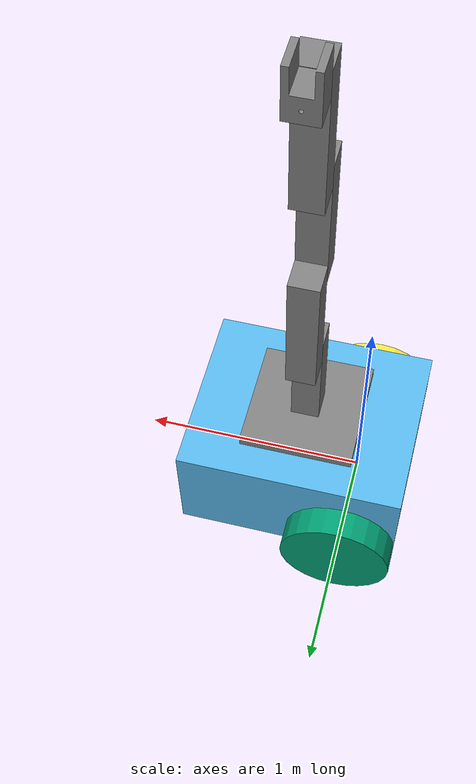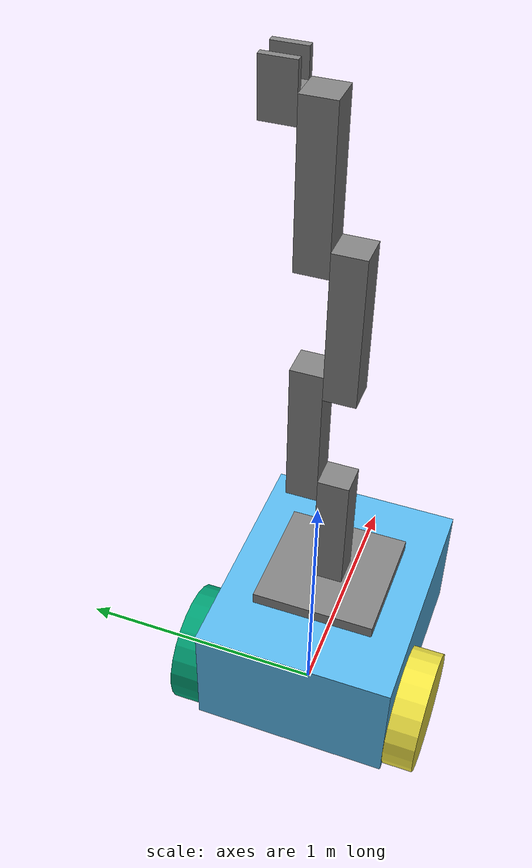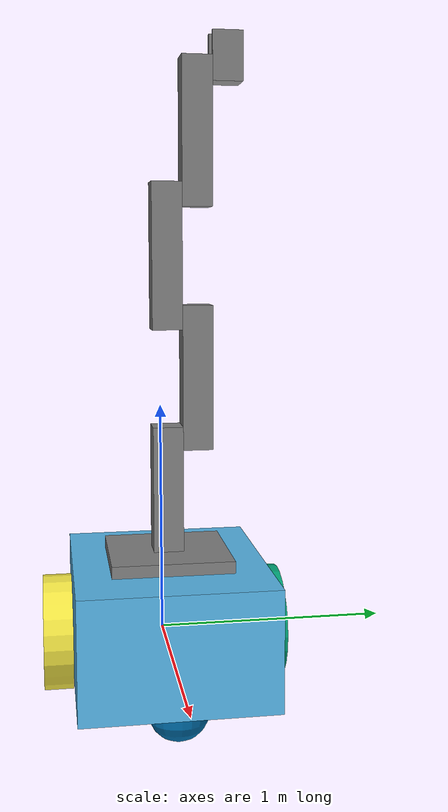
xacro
<?xml version='1.0'?>
<robot xmlns:xacro="http://www.ros.org/wiki/xacro" name="robot_complete_seb">

    <xacro:include filename="part_car_seb.urdf.xacro" />
    <xacro:include filename="part_arm_seb.urdf.xacro" />

    <!-- Connect arm to car -->
    <joint name="car_to_arm_joint" type="fixed">
        <parent link="chassis_link" />
        <child link="armBase_link" />
        <origin xyz="${blx/2} 0 ${blz}" rpy="0 0 0" />
    </joint>

</robot>

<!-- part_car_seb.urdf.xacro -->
<robot xmlns:xacro="http://www.ros.org/wiki/xacro" name="robot_car_seb">

    <!-- PROPIEDADES -->
    <xacro:property name="blx" value="${10/10}" />
    <xacro:property name="bly" value="${8/10}" />
    <xacro:property name="blz" value="${5/10}" />

    <xacro:property name="m" value="1" />

    <xacro:property name="olx" value="${2.5/10}" />
    <xacro:property name="oly" value="${(4 + 1.25/2)/10}" />
    <xacro:property name="olz" value="${1.25/10}" />

    <xacro:property name="crad" value="${2.5/10}" />
    <xacro:property name="lrad" value="${1.25/10}" />

    <xacro:property name="srad" value="${(2.5/2)/10}" />
    <xacro:property name="slx" value="${10/10 - srad}" />

    <!-- MACROS / FUNCIONES -->
    <xacro:macro name="wheel_macro" params="p_name p_radius p_length">
        <link name="${p_name}">
            <visual>
                <!-- box geometry -->
                <geometry>
                    <cylinder radius="${p_radius}" length="${p_length}" />
                </geometry>
                <origin xyz="0 0 0" rpy="${-pi/2} 0 0" />
            </visual>

            <inertial>
                <mass value="${m}" />
                <origin xyz="0 0 0" rpy="0 0 0" />
                <inertia ixx="${1/12*m*(p_length*p_length + 3*p_radius*p_radius)}" ixy="0" ixz="0"
                    iyy="${1/12*m*(p_length*p_length + 3*p_radius*p_radius)}" iyz="0"
                    izz="${1/2*m*p_radius*p_radius}" />
            </inertial>

            <collision>
                <!-- box geometry -->
                <geometry>
                    <cylinder radius="${p_radius}" length="${p_length}" />
                </geometry>
                <origin xyz="0 0 0" rpy="${-pi/2} 0 0" />
            </collision>
        </link>
    </xacro:macro>

    <!-- INICIO ROBOT -->
    <link name="base_link">
    </link>

    <joint name="base_chassis_joint" type="fixed">
        <parent link="base_link" />
        <child link="chassis_link" />
        <!--Crea offsets the child con respecto a parent -->
        <origin xyz="${-olx} 0 ${-olz}" rpy="0 0 0" />
    </joint>

    <link name="chassis_link">
        <visual>
            <!-- box geometry -->
            <geometry>
                <box size="${blx} ${bly} ${blz}" />
            </geometry>
            <!-- Esto mueve la caja desde el centro, no el origen con respecto a la caja-->
            <origin xyz="${blx/2} 0 ${blz/2}" rpy="0 0 0" />
        </visual>

        <inertial>
            <mass value="${m}" />
            <origin xyz="0 0 0" rpy="0 0 0" />
            <inertia ixx="${1/12*m*(blz*blz + bly*bly)}" ixy="0" ixz="0"
                iyy="${1/12*m*(blx*blx + blz*blz)}" iyz="0" izz="${1/12*m*(bly*bly + blx*blx)}" />
        </inertial>

        <collision>
            <!-- box geometry -->
            <geometry>
                <box size="${blx} ${bly} ${blz}" />
            </geometry>
            <origin xyz="${blx/2} 0 ${-blz/2}" rpy="0 0 0" />
        </collision>
    </link>
    <xacro:wheel_macro p_name="rwheel_link"
        p_radius="${crad}"
        p_length="${lrad}" />

    <joint name="chassis_rwheel_joint" type="continuous">
        <parent link="chassis_link" />
        <child link="rwheel_link" />
        <origin xyz="${olx} ${oly} ${olz}" rpy="0 0 0" />
        <axis xyz="0 1 0" />
        <limit effort="1" lower="0" upper="${2*pi}" velocity="1" />
        <dynamics damping="1" friction="1" />
    </joint>

    <xacro:wheel_macro p_name="lwheel_link"
        p_radius="${crad}"
        p_length="${lrad}" />

    <joint name="chassis_lwheel_joint" type="continuous">
        <parent link="chassis_link" />
        <child link="lwheel_link" />
        <origin xyz="${olx} ${-oly} ${olz}" rpy="0 0 0" />
        <axis xyz="0 1 0" />
        <limit effort="1" lower="0" upper="${2*pi}" velocity="1" />
        <dynamics damping="1" friction="1" />
    </joint>

    <link name="sphere_link">
        <visual>
            <!-- Sphere-->
            <geometry>
                <sphere radius="${srad}" />
            </geometry>
            <origin xyz="0 0 0" rpy="0 0 0" />
        </visual>

        <inertial>
            <mass value="${m}" />
            <origin xyz="0 0 0" rpy="0 0 0" />
            <inertia ixx="${m*2/5*srad*srad}" ixy="0" ixz="0"
                iyy="${m*2/5*srad*srad}" iyz="0" izz="${m*2/5*srad*srad}" />
        </inertial>

        <collision>
            <!-- Sphere-->
            <geometry>
                <sphere radius="${srad}" />
            </geometry>
            <origin xyz="0 0 0" rpy="0 0 0" />
        </collision>
    </link>

    <joint name="chassis_sphere_joint" type="fixed">
        <parent link="chassis_link" />
        <child link="sphere_link" />
        <origin xyz="${slx} 0 0" rpy="0 0 0" />
    </joint>

</robot>

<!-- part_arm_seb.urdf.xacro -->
<robot xmlns:xacro="http://www.ros.org/wiki/xacro" name="robot_arm_seb">

    <!-- PROPIEDADES -->
    <!-- Brazo -->
    <xacro:property name="armLz" value="${120/factor}" />
    <xacro:property name="armL1z" value="${110/factor}" />
    <xacro:property name="armJz" value="${100/factor}" />
    <xacro:property name="armLxy" value="${25/factor}" />

    <xacro:property name="m" value="1" />
    <xacro:property name="factor" value="200" />

    <!-- Base -->
    <xacro:property name="bL" value="${100/factor}" />
    <xacro:property name="bH" value="${10/factor}" />

    <!-- Tool -->
    <xacro:property name = "offset_tool" value="${10/factor}" />

    <!-- MACROS / FUNCIONES -->
    <!--Boxes:
    x -> l; y -> w; z -> h -->
    <xacro:macro name="arm_macro" params="p_name p_length p_width p_height p_offset">
        <link name="${p_name}">
            <visual>
                <!-- box geometry -->
                <geometry>
                    <box size="${p_length} ${p_width} ${p_height}" />
                </geometry>
                <!-- Esto mueve la caja desde el centro, no el origen con respecto a la caja-->
                <origin xyz="0 0 ${p_offset}" rpy="0 0 0" />

                <material name="gray">
                    <color rgba="0.5 0.5 0.5 1" />
                </material>

            </visual>

            <inertial>
                <mass value="${m}" />
                <origin xyz="0 0 ${p_height/2}" rpy="0 0 0" />
                <inertia ixx="${1/12*m*(p_height*p_height + p_width*p_width)}" ixy="0" ixz="0"
                    iyy="${1/12*m*(p_length*p_length + p_height*p_height)}" iyz="0"
                    izz="${1/12*m*(p_width*p_width + p_length*p_length)}" />
            </inertial>

            <collision>
                <!-- box geometry -->
                <geometry>
                    <box size="${p_length} ${p_width} ${p_height}" />
                </geometry>
                <origin xyz="0 0 ${p_height/2}" rpy="0 0 0" />
            </collision>
        </link>
    </xacro:macro>

    <xacro:arm_macro p_name="armBase_link"
        p_length="${bL}"
        p_width="${bL}"
        p_height="${bH}"
        p_offset="${bH/2}" />

    <xacro:arm_macro p_name="arm1_link"
        p_length="${armLxy}"
        p_width="${armLxy}"
        p_height="${armL1z}"
        p_offset="${armL1z/2}" />

    <joint name="armBase_arm1_joint" type="fixed">
        <parent link="armBase_link" />
        <child link="arm1_link" />
        <!--Crea
        offsets the child con respecto a parent -->
        <origin xyz="0 0 ${bH/2}" rpy="0 0 0" />
    </joint>

    <xacro:arm_macro p_name="arm2_link"
        p_length="${armLxy}"
        p_width="${armLxy}"
        p_height="${armLz}"
        p_offset="${armLz*0.42}" />

    <joint name="arm1_arm2_joint" type="revolute">
        <parent link="arm1_link" />
        <child link="arm2_link" />
        <origin xyz="0 ${armLxy} ${armJz}" rpy="0 0 0" />
        <axis xyz="0 1 0" />
        <limit effort="1" lower="-1.57" upper="1.57" velocity="1" />
        <dynamics damping="0.1" friction="0.1" />
    </joint>

    <xacro:arm_macro p_name="arm3_link"
        p_length="${armLxy}"
        p_width="${armLxy}"
        p_height="${armLz}"
        p_offset="${armLz*0.42}" />

    <joint name="arm2_arm3_joint" type="revolute">
        <parent link="arm2_link" />
        <child link="arm3_link" />
        <origin xyz="0 ${-armLxy} ${armJz}" rpy="0 0 0" />
        <axis xyz="0 1 0" />
        <limit effort="1" lower="-1.57" upper="1.57" velocity="1" />
        <dynamics damping="0.1" friction="0.1" />
    </joint>

    <xacro:arm_macro p_name="arm4_link"
        p_length="${armLxy}"
        p_width="${armLxy}"
        p_height="${armLz}"
        p_offset="${armLz*0.42}" />

    <joint name="arm3_arm4_joint" type="revolute">
        <parent link="arm3_link" />
        <child link="arm4_link" />
        <origin xyz="0 ${armLxy} ${armJz}" rpy="0 0 0" />
        <axis xyz="0 1 0" />
        <limit effort="1" lower="-1.57" upper="1.57" velocity="1" />
        <dynamics damping="0.1" friction="0.1" />
    </joint>

    <link name="tool_link">
        <visual>
            <!-- mesh -->
            <geometry>
                <mesh filename="package://modelrobot_pkg_seb/model/tool.stl" scale="${1/factor} ${1/factor} ${1/factor}" />
            </geometry>
            <origin xyz="0 0 ${offset_tool}" rpy="0 0 0" />

            <material name="gray">
                <color rgba="0.5 0.5 0.5 1" />
            </material>

        </visual>

        <inertial>
            <mass value="${m}" />
            <origin xyz="0 0 ${offset_tool}" rpy="0 0 0" />
            <inertia ixx="${1/12*m*(40/factor*40/factor + 25/factor*25/factor)}" ixy="0" ixz="0"
                iyy="${1/12*m*(25/factor*25/factor + 40/factor*40/factor)}" iyz="0"
                izz="${1/12*m*(25/factor*25/factor + 25/factor*25/factor)}" />
        </inertial>

        <collision>
            <!-- mesh -->
            <geometry>
                <mesh filename="package://modelrobot_pkg_seb/model/tool.stl" scale="${1/factor} ${1/factor} ${1/factor}"/>
            </geometry>
            <origin xyz="0 0 0" rpy="0 0 0" />
        </collision>
    </link>

    <joint name="arm4_tool_joint" type="revolute">
        <parent link="arm4_link" />
        <child link="tool_link" />
        <origin xyz="0 ${armLxy/2} ${armJz}" rpy="0 0 0" />
        <axis xyz="0 1 0" />
        <limit effort="1" lower="-1.57" upper="1.57" velocity="1" />
        <dynamics damping="0.1" friction="0.1" />
    </joint>

</robot>
